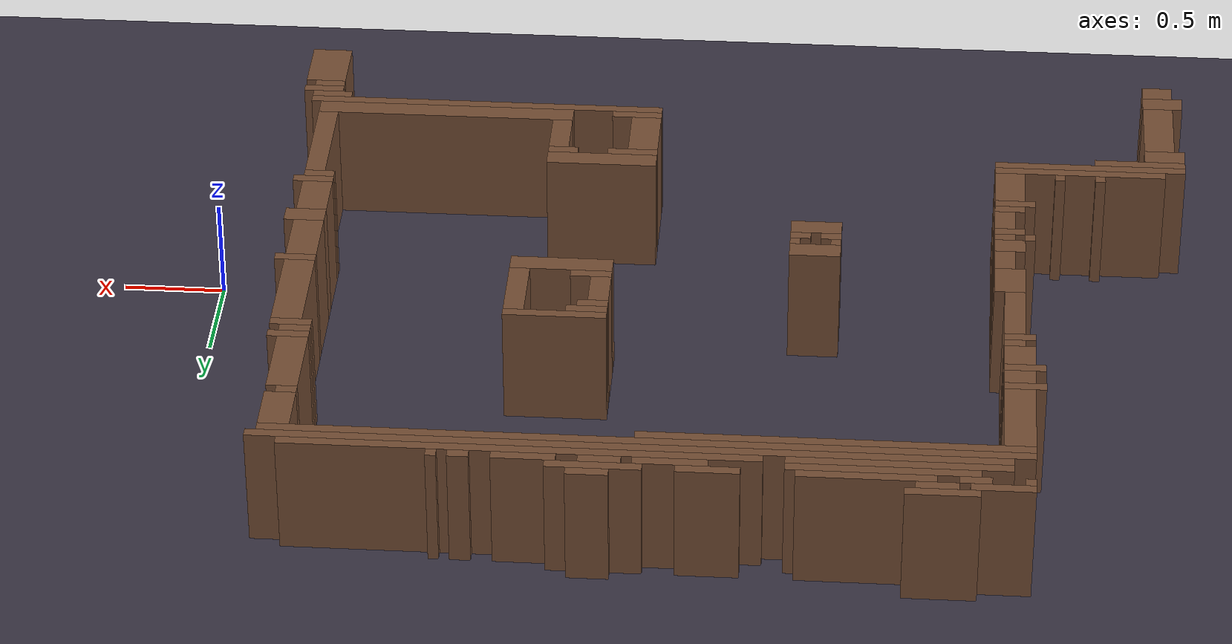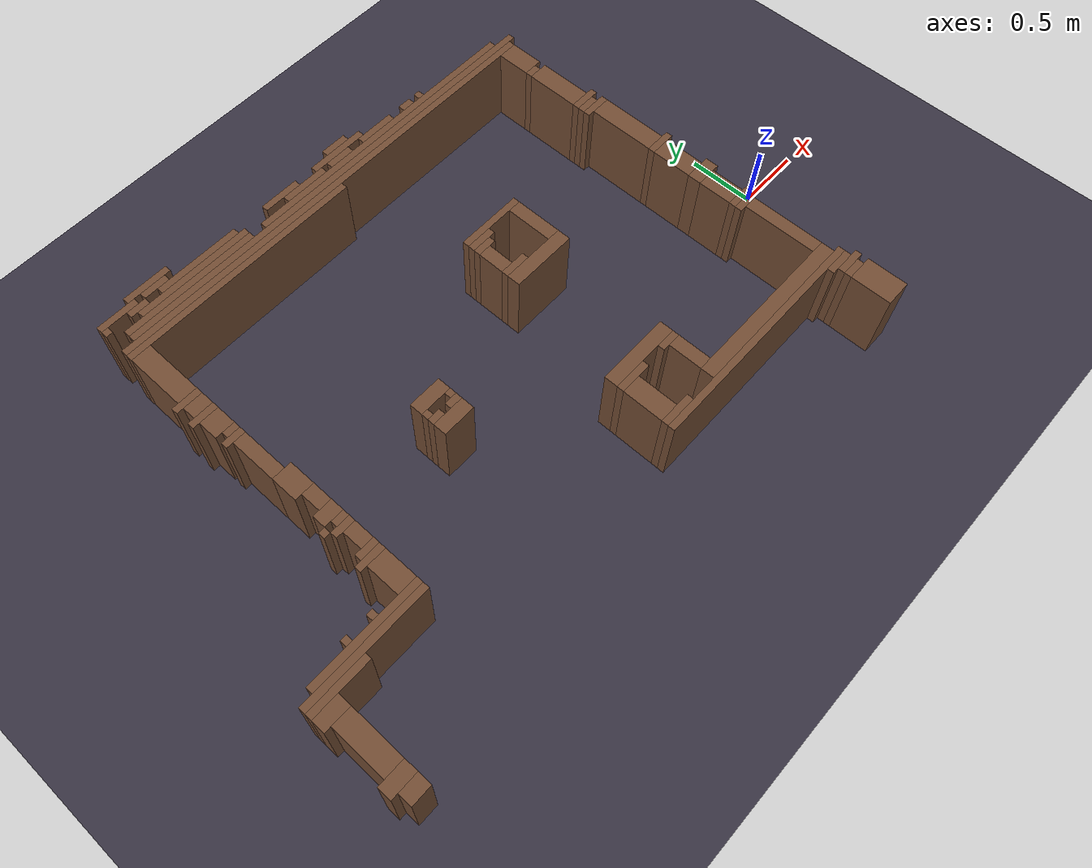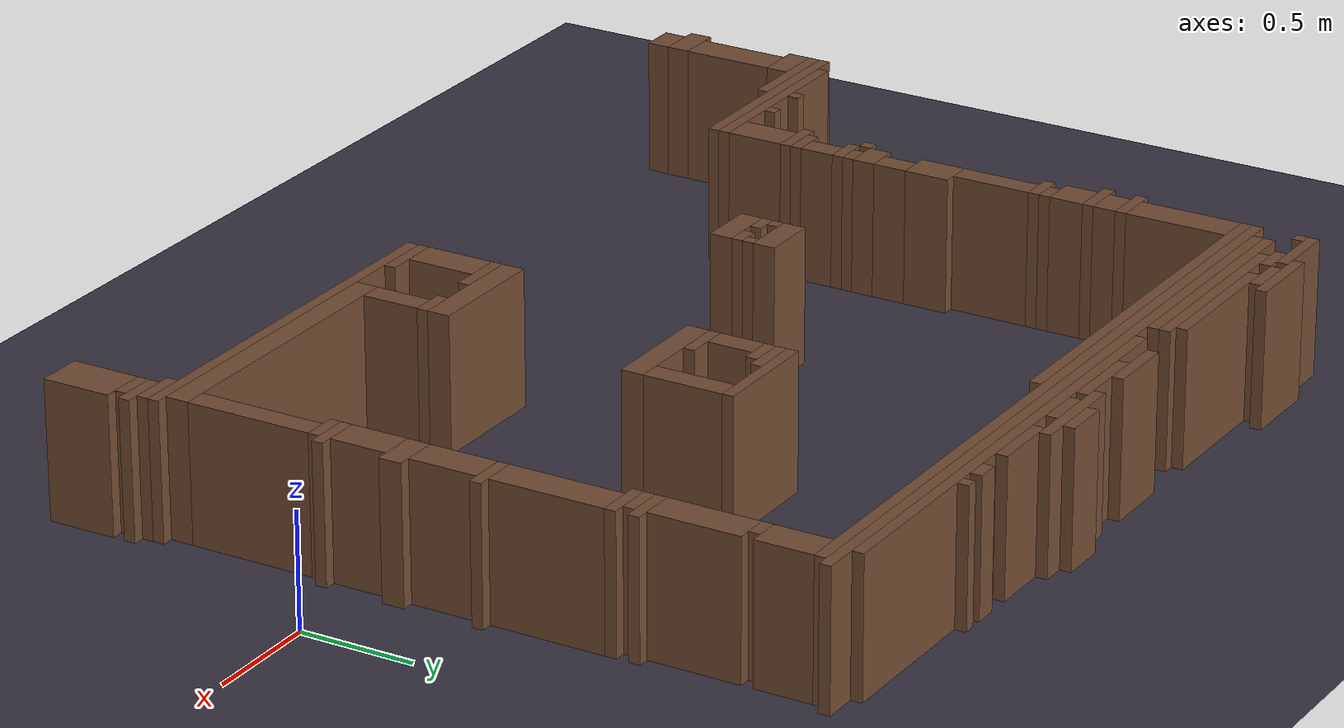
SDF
<sdf version="1.8">
 <world name="holloween">
  <model name="ground_plane">
   <static>true</static>
   <link name="link">
    <collision name="collision">
     <geometry><plane><normal>0 0 1</normal><size>100 100</size></plane></geometry>
    </collision>
    <visual name="visual">
     <geometry><plane><normal>0 0 1</normal><size>100 100</size></plane></geometry>
     <material><ambient>0.22 0.2 0.26 1</ambient><diffuse>0.22 0.2 0.26 1</diffuse></material>
    </visual>
   </link>
  </model>
  <model name="wall_0">
   <static>true</static>
   <pose>-3.634 2.249 0.300 0 0 0</pose>
   <link name="l">
    <collision name="c"><geometry><box><size>0.350 0.050 0.600</size></box></geometry></collision>
    <visual name="v">
     <geometry><box><size>0.350 0.050 0.600</size></box></geometry>
     <material><ambient>0.45 0.3 0.2 1</ambient><diffuse>0.45 0.3 0.2 1</diffuse></material>
    </visual>
   </link>
  </model>
  <model name="wall_1">
   <static>true</static>
   <pose>-3.609 2.199 0.300 0 0 0</pose>
   <link name="l">
    <collision name="c"><geometry><box><size>0.200 0.050 0.600</size></box></geometry></collision>
    <visual name="v">
     <geometry><box><size>0.200 0.050 0.600</size></box></geometry>
     <material><ambient>0.45 0.3 0.2 1</ambient><diffuse>0.45 0.3 0.2 1</diffuse></material>
    </visual>
   </link>
  </model>
  <model name="wall_2">
   <static>true</static>
   <pose>-2.009 2.199 0.300 0 0 0</pose>
   <link name="l">
    <collision name="c"><geometry><box><size>0.200 0.050 0.600</size></box></geometry></collision>
    <visual name="v">
     <geometry><box><size>0.200 0.050 0.600</size></box></geometry>
     <material><ambient>0.45 0.3 0.2 1</ambient><diffuse>0.45 0.3 0.2 1</diffuse></material>
    </visual>
   </link>
  </model>
  <model name="wall_3">
   <static>true</static>
   <pose>-3.909 2.199 0.300 0 0 0</pose>
   <link name="l">
    <collision name="c"><geometry><box><size>0.300 0.050 0.600</size></box></geometry></collision>
    <visual name="v">
     <geometry><box><size>0.300 0.050 0.600</size></box></geometry>
     <material><ambient>0.45 0.3 0.2 1</ambient><diffuse>0.45 0.3 0.2 1</diffuse></material>
    </visual>
   </link>
  </model>
  <model name="wall_4">
   <static>true</static>
   <pose>-3.284 2.149 0.300 0 0 0</pose>
   <link name="l">
    <collision name="c"><geometry><box><size>0.650 0.050 0.600</size></box></geometry></collision>
    <visual name="v">
     <geometry><box><size>0.650 0.050 0.600</size></box></geometry>
     <material><ambient>0.45 0.3 0.2 1</ambient><diffuse>0.45 0.3 0.2 1</diffuse></material>
    </visual>
   </link>
  </model>
  <model name="wall_5">
   <static>true</static>
   <pose>-2.559 2.149 0.300 0 0 0</pose>
   <link name="l">
    <collision name="c"><geometry><box><size>0.300 0.050 0.600</size></box></geometry></collision>
    <visual name="v">
     <geometry><box><size>0.300 0.050 0.600</size></box></geometry>
     <material><ambient>0.45 0.3 0.2 1</ambient><diffuse>0.45 0.3 0.2 1</diffuse></material>
    </visual>
   </link>
  </model>
  <model name="wall_6">
   <static>true</static>
   <pose>-3.784 2.149 0.300 0 0 0</pose>
   <link name="l">
    <collision name="c"><geometry><box><size>0.150 0.050 0.600</size></box></geometry></collision>
    <visual name="v">
     <geometry><box><size>0.150 0.050 0.600</size></box></geometry>
     <material><ambient>0.45 0.3 0.2 1</ambient><diffuse>0.45 0.3 0.2 1</diffuse></material>
    </visual>
   </link>
  </model>
  <model name="wall_7">
   <static>true</static>
   <pose>-2.034 2.149 0.300 0 0 0</pose>
   <link name="l">
    <collision name="c"><geometry><box><size>0.450 0.050 0.600</size></box></geometry></collision>
    <visual name="v">
     <geometry><box><size>0.450 0.050 0.600</size></box></geometry>
     <material><ambient>0.45 0.3 0.2 1</ambient><diffuse>0.45 0.3 0.2 1</diffuse></material>
    </visual>
   </link>
  </model>
  <model name="wall_8">
   <static>true</static>
   <pose>-4.034 2.149 0.300 0 0 0</pose>
   <link name="l">
    <collision name="c"><geometry><box><size>0.050 0.050 0.600</size></box></geometry></collision>
    <visual name="v">
     <geometry><box><size>0.050 0.050 0.600</size></box></geometry>
     <material><ambient>0.45 0.3 0.2 1</ambient><diffuse>0.45 0.3 0.2 1</diffuse></material>
    </visual>
   </link>
  </model>
  <model name="wall_9">
   <static>true</static>
   <pose>-2.384 2.099 0.300 0 0 0</pose>
   <link name="l">
    <collision name="c"><geometry><box><size>0.350 0.050 0.600</size></box></geometry></collision>
    <visual name="v">
     <geometry><box><size>0.350 0.050 0.600</size></box></geometry>
     <material><ambient>0.45 0.3 0.2 1</ambient><diffuse>0.45 0.3 0.2 1</diffuse></material>
    </visual>
   </link>
  </model>
  <model name="wall_10">
   <static>true</static>
   <pose>-3.359 2.099 0.300 0 0 0</pose>
   <link name="l">
    <collision name="c"><geometry><box><size>0.900 0.050 0.600</size></box></geometry></collision>
    <visual name="v">
     <geometry><box><size>0.900 0.050 0.600</size></box></geometry>
     <material><ambient>0.45 0.3 0.2 1</ambient><diffuse>0.45 0.3 0.2 1</diffuse></material>
    </visual>
   </link>
  </model>
  <model name="wall_11">
   <static>true</static>
   <pose>-1.709 2.099 0.300 0 0 0</pose>
   <link name="l">
    <collision name="c"><geometry><box><size>0.300 0.050 0.600</size></box></geometry></collision>
    <visual name="v">
     <geometry><box><size>0.300 0.050 0.600</size></box></geometry>
     <material><ambient>0.45 0.3 0.2 1</ambient><diffuse>0.45 0.3 0.2 1</diffuse></material>
    </visual>
   </link>
  </model>
  <model name="wall_12">
   <static>true</static>
   <pose>-2.059 2.099 0.300 0 0 0</pose>
   <link name="l">
    <collision name="c"><geometry><box><size>0.200 0.050 0.600</size></box></geometry></collision>
    <visual name="v">
     <geometry><box><size>0.200 0.050 0.600</size></box></geometry>
     <material><ambient>0.45 0.3 0.2 1</ambient><diffuse>0.45 0.3 0.2 1</diffuse></material>
    </visual>
   </link>
  </model>
  <model name="wall_13">
   <static>true</static>
   <pose>-1.409 2.099 0.300 0 0 0</pose>
   <link name="l">
    <collision name="c"><geometry><box><size>0.100 0.050 0.600</size></box></geometry></collision>
    <visual name="v">
     <geometry><box><size>0.100 0.050 0.600</size></box></geometry>
     <material><ambient>0.45 0.3 0.2 1</ambient><diffuse>0.45 0.3 0.2 1</diffuse></material>
    </visual>
   </link>
  </model>
  <model name="wall_14">
   <static>true</static>
   <pose>-1.284 2.099 0.300 0 0 0</pose>
   <link name="l">
    <collision name="c"><geometry><box><size>0.050 0.050 0.600</size></box></geometry></collision>
    <visual name="v">
     <geometry><box><size>0.050 0.050 0.600</size></box></geometry>
     <material><ambient>0.45 0.3 0.2 1</ambient><diffuse>0.45 0.3 0.2 1</diffuse></material>
    </visual>
   </link>
  </model>
  <model name="wall_15">
   <static>true</static>
   <pose>-1.684 2.049 0.300 0 0 0</pose>
   <link name="l">
    <collision name="c"><geometry><box><size>2.250 0.050 0.600</size></box></geometry></collision>
    <visual name="v">
     <geometry><box><size>2.250 0.050 0.600</size></box></geometry>
     <material><ambient>0.45 0.3 0.2 1</ambient><diffuse>0.45 0.3 0.2 1</diffuse></material>
    </visual>
   </link>
  </model>
  <model name="wall_16">
   <static>true</static>
   <pose>-3.434 2.049 0.300 0 0 0</pose>
   <link name="l">
    <collision name="c"><geometry><box><size>1.050 0.050 0.600</size></box></geometry></collision>
    <visual name="v">
     <geometry><box><size>1.050 0.050 0.600</size></box></geometry>
     <material><ambient>0.45 0.3 0.2 1</ambient><diffuse>0.45 0.3 0.2 1</diffuse></material>
    </visual>
   </link>
  </model>
  <model name="wall_17">
   <static>true</static>
   <pose>-2.184 1.999 0.300 0 0 0</pose>
   <link name="l">
    <collision name="c"><geometry><box><size>3.550 0.050 0.600</size></box></geometry></collision>
    <visual name="v">
     <geometry><box><size>3.550 0.050 0.600</size></box></geometry>
     <material><ambient>0.45 0.3 0.2 1</ambient><diffuse>0.45 0.3 0.2 1</diffuse></material>
    </visual>
   </link>
  </model>
  <model name="wall_18">
   <static>true</static>
   <pose>-2.259 1.949 0.300 0 0 0</pose>
   <link name="l">
    <collision name="c"><geometry><box><size>3.600 0.050 0.600</size></box></geometry></collision>
    <visual name="v">
     <geometry><box><size>3.600 0.050 0.600</size></box></geometry>
     <material><ambient>0.45 0.3 0.2 1</ambient><diffuse>0.45 0.3 0.2 1</diffuse></material>
    </visual>
   </link>
  </model>
  <model name="wall_19">
   <static>true</static>
   <pose>-3.134 1.899 0.300 0 0 0</pose>
   <link name="l">
    <collision name="c"><geometry><box><size>1.850 0.050 0.600</size></box></geometry></collision>
    <visual name="v">
     <geometry><box><size>1.850 0.050 0.600</size></box></geometry>
     <material><ambient>0.45 0.3 0.2 1</ambient><diffuse>0.45 0.3 0.2 1</diffuse></material>
    </visual>
   </link>
  </model>
  <model name="wall_20">
   <static>true</static>
   <pose>-0.534 1.799 0.300 0 0 0</pose>
   <link name="l">
    <collision name="c"><geometry><box><size>0.150 0.250 0.600</size></box></geometry></collision>
    <visual name="v">
     <geometry><box><size>0.150 0.250 0.600</size></box></geometry>
     <material><ambient>0.45 0.3 0.2 1</ambient><diffuse>0.45 0.3 0.2 1</diffuse></material>
    </visual>
   </link>
  </model>
  <model name="wall_21">
   <static>true</static>
   <pose>-0.559 1.649 0.300 0 0 0</pose>
   <link name="l">
    <collision name="c"><geometry><box><size>0.100 0.050 0.600</size></box></geometry></collision>
    <visual name="v">
     <geometry><box><size>0.100 0.050 0.600</size></box></geometry>
     <material><ambient>0.45 0.3 0.2 1</ambient><diffuse>0.45 0.3 0.2 1</diffuse></material>
    </visual>
   </link>
  </model>
  <model name="wall_22">
   <static>true</static>
   <pose>-3.984 1.649 0.300 0 0 0</pose>
   <link name="l">
    <collision name="c"><geometry><box><size>0.150 0.450 0.600</size></box></geometry></collision>
    <visual name="v">
     <geometry><box><size>0.150 0.450 0.600</size></box></geometry>
     <material><ambient>0.45 0.3 0.2 1</ambient><diffuse>0.45 0.3 0.2 1</diffuse></material>
    </visual>
   </link>
  </model>
  <model name="wall_23">
   <static>true</static>
   <pose>-4.009 1.399 0.300 0 0 0</pose>
   <link name="l">
    <collision name="c"><geometry><box><size>0.200 0.050 0.600</size></box></geometry></collision>
    <visual name="v">
     <geometry><box><size>0.200 0.050 0.600</size></box></geometry>
     <material><ambient>0.45 0.3 0.2 1</ambient><diffuse>0.45 0.3 0.2 1</diffuse></material>
    </visual>
   </link>
  </model>
  <model name="wall_24">
   <static>true</static>
   <pose>-3.984 1.324 0.300 0 0 0</pose>
   <link name="l">
    <collision name="c"><geometry><box><size>0.150 0.100 0.600</size></box></geometry></collision>
    <visual name="v">
     <geometry><box><size>0.150 0.100 0.600</size></box></geometry>
     <material><ambient>0.45 0.3 0.2 1</ambient><diffuse>0.45 0.3 0.2 1</diffuse></material>
    </visual>
   </link>
  </model>
  <model name="wall_25">
   <static>true</static>
   <pose>-0.534 1.424 0.300 0 0 0</pose>
   <link name="l">
    <collision name="c"><geometry><box><size>0.150 0.400 0.600</size></box></geometry></collision>
    <visual name="v">
     <geometry><box><size>0.150 0.400 0.600</size></box></geometry>
     <material><ambient>0.45 0.3 0.2 1</ambient><diffuse>0.45 0.3 0.2 1</diffuse></material>
    </visual>
   </link>
  </model>
  <model name="wall_26">
   <static>true</static>
   <pose>-4.009 1.249 0.300 0 0 0</pose>
   <link name="l">
    <collision name="c"><geometry><box><size>0.200 0.050 0.600</size></box></geometry></collision>
    <visual name="v">
     <geometry><box><size>0.200 0.050 0.600</size></box></geometry>
     <material><ambient>0.45 0.3 0.2 1</ambient><diffuse>0.45 0.3 0.2 1</diffuse></material>
    </visual>
   </link>
  </model>
  <model name="wall_27">
   <static>true</static>
   <pose>-0.509 1.199 0.300 0 0 0</pose>
   <link name="l">
    <collision name="c"><geometry><box><size>0.200 0.050 0.600</size></box></geometry></collision>
    <visual name="v">
     <geometry><box><size>0.200 0.050 0.600</size></box></geometry>
     <material><ambient>0.45 0.3 0.2 1</ambient><diffuse>0.45 0.3 0.2 1</diffuse></material>
    </visual>
   </link>
  </model>
  <model name="wall_28">
   <static>true</static>
   <pose>-0.534 1.149 0.300 0 0 0</pose>
   <link name="l">
    <collision name="c"><geometry><box><size>0.150 0.050 0.600</size></box></geometry></collision>
    <visual name="v">
     <geometry><box><size>0.150 0.050 0.600</size></box></geometry>
     <material><ambient>0.45 0.3 0.2 1</ambient><diffuse>0.45 0.3 0.2 1</diffuse></material>
    </visual>
   </link>
  </model>
  <model name="wall_29">
   <static>true</static>
   <pose>-3.984 1.149 0.300 0 0 0</pose>
   <link name="l">
    <collision name="c"><geometry><box><size>0.150 0.150 0.600</size></box></geometry></collision>
    <visual name="v">
     <geometry><box><size>0.150 0.150 0.600</size></box></geometry>
     <material><ambient>0.45 0.3 0.2 1</ambient><diffuse>0.45 0.3 0.2 1</diffuse></material>
    </visual>
   </link>
  </model>
  <model name="wall_30">
   <static>true</static>
   <pose>-0.509 1.099 0.300 0 0 0</pose>
   <link name="l">
    <collision name="c"><geometry><box><size>0.200 0.050 0.600</size></box></geometry></collision>
    <visual name="v">
     <geometry><box><size>0.200 0.050 0.600</size></box></geometry>
     <material><ambient>0.45 0.3 0.2 1</ambient><diffuse>0.45 0.3 0.2 1</diffuse></material>
    </visual>
   </link>
  </model>
  <model name="wall_31">
   <static>true</static>
   <pose>-3.959 1.049 0.300 0 0 0</pose>
   <link name="l">
    <collision name="c"><geometry><box><size>0.100 0.050 0.600</size></box></geometry></collision>
    <visual name="v">
     <geometry><box><size>0.100 0.050 0.600</size></box></geometry>
     <material><ambient>0.45 0.3 0.2 1</ambient><diffuse>0.45 0.3 0.2 1</diffuse></material>
    </visual>
   </link>
  </model>
  <model name="wall_32">
   <static>true</static>
   <pose>-3.984 0.999 0.300 0 0 0</pose>
   <link name="l">
    <collision name="c"><geometry><box><size>0.150 0.050 0.600</size></box></geometry></collision>
    <visual name="v">
     <geometry><box><size>0.150 0.050 0.600</size></box></geometry>
     <material><ambient>0.45 0.3 0.2 1</ambient><diffuse>0.45 0.3 0.2 1</diffuse></material>
    </visual>
   </link>
  </model>
  <model name="wall_33">
   <static>true</static>
   <pose>-1.759 0.949 0.300 0 0 0</pose>
   <link name="l">
    <collision name="c"><geometry><box><size>0.500 0.050 0.600</size></box></geometry></collision>
    <visual name="v">
     <geometry><box><size>0.500 0.050 0.600</size></box></geometry>
     <material><ambient>0.45 0.3 0.2 1</ambient><diffuse>0.45 0.3 0.2 1</diffuse></material>
    </visual>
   </link>
  </model>
  <model name="wall_34">
   <static>true</static>
   <pose>-1.909 0.899 0.300 0 0 0</pose>
   <link name="l">
    <collision name="c"><geometry><box><size>0.200 0.050 0.600</size></box></geometry></collision>
    <visual name="v">
     <geometry><box><size>0.200 0.050 0.600</size></box></geometry>
     <material><ambient>0.45 0.3 0.2 1</ambient><diffuse>0.45 0.3 0.2 1</diffuse></material>
    </visual>
   </link>
  </model>
  <model name="wall_35">
   <static>true</static>
   <pose>-1.934 0.849 0.300 0 0 0</pose>
   <link name="l">
    <collision name="c"><geometry><box><size>0.150 0.050 0.600</size></box></geometry></collision>
    <visual name="v">
     <geometry><box><size>0.150 0.050 0.600</size></box></geometry>
     <material><ambient>0.45 0.3 0.2 1</ambient><diffuse>0.45 0.3 0.2 1</diffuse></material>
    </visual>
   </link>
  </model>
  <model name="wall_36">
   <static>true</static>
   <pose>-3.959 0.799 0.300 0 0 0</pose>
   <link name="l">
    <collision name="c"><geometry><box><size>0.100 0.350 0.600</size></box></geometry></collision>
    <visual name="v">
     <geometry><box><size>0.100 0.350 0.600</size></box></geometry>
     <material><ambient>0.45 0.3 0.2 1</ambient><diffuse>0.45 0.3 0.2 1</diffuse></material>
    </visual>
   </link>
  </model>
  <model name="wall_37">
   <static>true</static>
   <pose>-1.959 0.724 0.300 0 0 0</pose>
   <link name="l">
    <collision name="c"><geometry><box><size>0.100 0.200 0.600</size></box></geometry></collision>
    <visual name="v">
     <geometry><box><size>0.100 0.200 0.600</size></box></geometry>
     <material><ambient>0.45 0.3 0.2 1</ambient><diffuse>0.45 0.3 0.2 1</diffuse></material>
    </visual>
   </link>
  </model>
  <model name="wall_38">
   <static>true</static>
   <pose>-0.484 0.824 0.300 0 0 0</pose>
   <link name="l">
    <collision name="c"><geometry><box><size>0.150 0.500 0.600</size></box></geometry></collision>
    <visual name="v">
     <geometry><box><size>0.150 0.500 0.600</size></box></geometry>
     <material><ambient>0.45 0.3 0.2 1</ambient><diffuse>0.45 0.3 0.2 1</diffuse></material>
    </visual>
   </link>
  </model>
  <model name="wall_39">
   <static>true</static>
   <pose>-1.559 0.749 0.300 0 0 0</pose>
   <link name="l">
    <collision name="c"><geometry><box><size>0.100 0.350 0.600</size></box></geometry></collision>
    <visual name="v">
     <geometry><box><size>0.100 0.350 0.600</size></box></geometry>
     <material><ambient>0.45 0.3 0.2 1</ambient><diffuse>0.45 0.3 0.2 1</diffuse></material>
    </visual>
   </link>
  </model>
  <model name="wall_40">
   <static>true</static>
   <pose>-1.909 0.599 0.300 0 0 0</pose>
   <link name="l">
    <collision name="c"><geometry><box><size>0.200 0.050 0.600</size></box></geometry></collision>
    <visual name="v">
     <geometry><box><size>0.200 0.050 0.600</size></box></geometry>
     <material><ambient>0.45 0.3 0.2 1</ambient><diffuse>0.45 0.3 0.2 1</diffuse></material>
    </visual>
   </link>
  </model>
  <model name="wall_41">
   <static>true</static>
   <pose>-0.459 0.549 0.300 0 0 0</pose>
   <link name="l">
    <collision name="c"><geometry><box><size>0.200 0.050 0.600</size></box></geometry></collision>
    <visual name="v">
     <geometry><box><size>0.200 0.050 0.600</size></box></geometry>
     <material><ambient>0.45 0.3 0.2 1</ambient><diffuse>0.45 0.3 0.2 1</diffuse></material>
    </visual>
   </link>
  </model>
  <model name="wall_42">
   <static>true</static>
   <pose>-1.759 0.524 0.300 0 0 0</pose>
   <link name="l">
    <collision name="c"><geometry><box><size>0.500 0.100 0.600</size></box></geometry></collision>
    <visual name="v">
     <geometry><box><size>0.500 0.100 0.600</size></box></geometry>
     <material><ambient>0.45 0.3 0.2 1</ambient><diffuse>0.45 0.3 0.2 1</diffuse></material>
    </visual>
   </link>
  </model>
  <model name="wall_43">
   <static>true</static>
   <pose>-3.934 0.524 0.300 0 0 0</pose>
   <link name="l">
    <collision name="c"><geometry><box><size>0.150 0.200 0.600</size></box></geometry></collision>
    <visual name="v">
     <geometry><box><size>0.150 0.200 0.600</size></box></geometry>
     <material><ambient>0.45 0.3 0.2 1</ambient><diffuse>0.45 0.3 0.2 1</diffuse></material>
    </visual>
   </link>
  </model>
  <model name="wall_44">
   <static>true</static>
   <pose>-3.909 0.349 0.300 0 0 0</pose>
   <link name="l">
    <collision name="c"><geometry><box><size>0.100 0.150 0.600</size></box></geometry></collision>
    <visual name="v">
     <geometry><box><size>0.100 0.150 0.600</size></box></geometry>
     <material><ambient>0.45 0.3 0.2 1</ambient><diffuse>0.45 0.3 0.2 1</diffuse></material>
    </visual>
   </link>
  </model>
  <model name="wall_45">
   <static>true</static>
   <pose>-2.984 0.324 0.300 0 0 0</pose>
   <link name="l">
    <collision name="c"><geometry><box><size>0.250 0.100 0.600</size></box></geometry></collision>
    <visual name="v">
     <geometry><box><size>0.250 0.100 0.600</size></box></geometry>
     <material><ambient>0.45 0.3 0.2 1</ambient><diffuse>0.45 0.3 0.2 1</diffuse></material>
    </visual>
   </link>
  </model>
  <model name="wall_46">
   <static>true</static>
   <pose>-0.484 0.374 0.300 0 0 0</pose>
   <link name="l">
    <collision name="c"><geometry><box><size>0.150 0.300 0.600</size></box></geometry></collision>
    <visual name="v">
     <geometry><box><size>0.150 0.300 0.600</size></box></geometry>
     <material><ambient>0.45 0.3 0.2 1</ambient><diffuse>0.45 0.3 0.2 1</diffuse></material>
    </visual>
   </link>
  </model>
  <model name="wall_47">
   <static>true</static>
   <pose>-3.084 0.249 0.300 0 0 0</pose>
   <link name="l">
    <collision name="c"><geometry><box><size>0.050 0.050 0.600</size></box></geometry></collision>
    <visual name="v">
     <geometry><box><size>0.050 0.050 0.600</size></box></geometry>
     <material><ambient>0.45 0.3 0.2 1</ambient><diffuse>0.45 0.3 0.2 1</diffuse></material>
    </visual>
   </link>
  </model>
  <model name="wall_48">
   <static>true</static>
   <pose>-2.884 0.249 0.300 0 0 0</pose>
   <link name="l">
    <collision name="c"><geometry><box><size>0.050 0.050 0.600</size></box></geometry></collision>
    <visual name="v">
     <geometry><box><size>0.050 0.050 0.600</size></box></geometry>
     <material><ambient>0.45 0.3 0.2 1</ambient><diffuse>0.45 0.3 0.2 1</diffuse></material>
    </visual>
   </link>
  </model>
  <model name="wall_49">
   <static>true</static>
   <pose>-3.934 0.224 0.300 0 0 0</pose>
   <link name="l">
    <collision name="c"><geometry><box><size>0.150 0.100 0.600</size></box></geometry></collision>
    <visual name="v">
     <geometry><box><size>0.150 0.100 0.600</size></box></geometry>
     <material><ambient>0.45 0.3 0.2 1</ambient><diffuse>0.45 0.3 0.2 1</diffuse></material>
    </visual>
   </link>
  </model>
  <model name="wall_50">
   <static>true</static>
   <pose>-2.909 0.199 0.300 0 0 0</pose>
   <link name="l">
    <collision name="c"><geometry><box><size>0.100 0.050 0.600</size></box></geometry></collision>
    <visual name="v">
     <geometry><box><size>0.100 0.050 0.600</size></box></geometry>
     <material><ambient>0.45 0.3 0.2 1</ambient><diffuse>0.45 0.3 0.2 1</diffuse></material>
    </visual>
   </link>
  </model>
  <model name="wall_51">
   <static>true</static>
   <pose>-3.059 0.199 0.300 0 0 0</pose>
   <link name="l">
    <collision name="c"><geometry><box><size>0.100 0.050 0.600</size></box></geometry></collision>
    <visual name="v">
     <geometry><box><size>0.100 0.050 0.600</size></box></geometry>
     <material><ambient>0.45 0.3 0.2 1</ambient><diffuse>0.45 0.3 0.2 1</diffuse></material>
    </visual>
   </link>
  </model>
  <model name="wall_52">
   <static>true</static>
   <pose>-0.459 0.174 0.300 0 0 0</pose>
   <link name="l">
    <collision name="c"><geometry><box><size>0.200 0.100 0.600</size></box></geometry></collision>
    <visual name="v">
     <geometry><box><size>0.200 0.100 0.600</size></box></geometry>
     <material><ambient>0.45 0.3 0.2 1</ambient><diffuse>0.45 0.3 0.2 1</diffuse></material>
    </visual>
   </link>
  </model>
  <model name="wall_53">
   <static>true</static>
   <pose>-4.034 0.149 0.300 0 0 0</pose>
   <link name="l">
    <collision name="c"><geometry><box><size>0.050 0.050 0.600</size></box></geometry></collision>
    <visual name="v">
     <geometry><box><size>0.050 0.050 0.600</size></box></geometry>
     <material><ambient>0.45 0.3 0.2 1</ambient><diffuse>0.45 0.3 0.2 1</diffuse></material>
    </visual>
   </link>
  </model>
  <model name="wall_54">
   <static>true</static>
   <pose>-3.909 0.149 0.300 0 0 0</pose>
   <link name="l">
    <collision name="c"><geometry><box><size>0.100 0.050 0.600</size></box></geometry></collision>
    <visual name="v">
     <geometry><box><size>0.100 0.050 0.600</size></box></geometry>
     <material><ambient>0.45 0.3 0.2 1</ambient><diffuse>0.45 0.3 0.2 1</diffuse></material>
    </visual>
   </link>
  </model>
  <model name="wall_55">
   <static>true</static>
   <pose>-2.984 0.124 0.300 0 0 0</pose>
   <link name="l">
    <collision name="c"><geometry><box><size>0.250 0.100 0.600</size></box></geometry></collision>
    <visual name="v">
     <geometry><box><size>0.250 0.100 0.600</size></box></geometry>
     <material><ambient>0.45 0.3 0.2 1</ambient><diffuse>0.45 0.3 0.2 1</diffuse></material>
    </visual>
   </link>
  </model>
  <model name="wall_56">
   <static>true</static>
   <pose>-3.934 0.099 0.300 0 0 0</pose>
   <link name="l">
    <collision name="c"><geometry><box><size>0.150 0.050 0.600</size></box></geometry></collision>
    <visual name="v">
     <geometry><box><size>0.150 0.050 0.600</size></box></geometry>
     <material><ambient>0.45 0.3 0.2 1</ambient><diffuse>0.45 0.3 0.2 1</diffuse></material>
    </visual>
   </link>
  </model>
  <model name="wall_57">
   <static>true</static>
   <pose>-3.909 -0.001 0.300 0 0 0</pose>
   <link name="l">
    <collision name="c"><geometry><box><size>0.100 0.150 0.600</size></box></geometry></collision>
    <visual name="v">
     <geometry><box><size>0.100 0.150 0.600</size></box></geometry>
     <material><ambient>0.45 0.3 0.2 1</ambient><diffuse>0.45 0.3 0.2 1</diffuse></material>
    </visual>
   </link>
  </model>
  <model name="wall_58">
   <static>true</static>
   <pose>-0.484 -0.001 0.300 0 0 0</pose>
   <link name="l">
    <collision name="c"><geometry><box><size>0.150 0.250 0.600</size></box></geometry></collision>
    <visual name="v">
     <geometry><box><size>0.150 0.250 0.600</size></box></geometry>
     <material><ambient>0.45 0.3 0.2 1</ambient><diffuse>0.45 0.3 0.2 1</diffuse></material>
    </visual>
   </link>
  </model>
  <model name="wall_59">
   <static>true</static>
   <pose>-3.934 -0.101 0.300 0 0 0</pose>
   <link name="l">
    <collision name="c"><geometry><box><size>0.150 0.050 0.600</size></box></geometry></collision>
    <visual name="v">
     <geometry><box><size>0.150 0.050 0.600</size></box></geometry>
     <material><ambient>0.45 0.3 0.2 1</ambient><diffuse>0.45 0.3 0.2 1</diffuse></material>
    </visual>
   </link>
  </model>
  <model name="wall_60">
   <static>true</static>
   <pose>-3.959 -0.151 0.300 0 0 0</pose>
   <link name="l">
    <collision name="c"><geometry><box><size>0.200 0.050 0.600</size></box></geometry></collision>
    <visual name="v">
     <geometry><box><size>0.200 0.050 0.600</size></box></geometry>
     <material><ambient>0.45 0.3 0.2 1</ambient><diffuse>0.45 0.3 0.2 1</diffuse></material>
    </visual>
   </link>
  </model>
  <model name="wall_61">
   <static>true</static>
   <pose>-0.459 -0.151 0.300 0 0 0</pose>
   <link name="l">
    <collision name="c"><geometry><box><size>0.200 0.050 0.600</size></box></geometry></collision>
    <visual name="v">
     <geometry><box><size>0.200 0.050 0.600</size></box></geometry>
     <material><ambient>0.45 0.3 0.2 1</ambient><diffuse>0.45 0.3 0.2 1</diffuse></material>
    </visual>
   </link>
  </model>
  <model name="wall_62">
   <static>true</static>
   <pose>-0.484 -0.201 0.300 0 0 0</pose>
   <link name="l">
    <collision name="c"><geometry><box><size>0.150 0.050 0.600</size></box></geometry></collision>
    <visual name="v">
     <geometry><box><size>0.150 0.050 0.600</size></box></geometry>
     <material><ambient>0.45 0.3 0.2 1</ambient><diffuse>0.45 0.3 0.2 1</diffuse></material>
    </visual>
   </link>
  </model>
  <model name="wall_63">
   <static>true</static>
   <pose>-3.934 -0.301 0.300 0 0 0</pose>
   <link name="l">
    <collision name="c"><geometry><box><size>0.150 0.250 0.600</size></box></geometry></collision>
    <visual name="v">
     <geometry><box><size>0.150 0.250 0.600</size></box></geometry>
     <material><ambient>0.45 0.3 0.2 1</ambient><diffuse>0.45 0.3 0.2 1</diffuse></material>
    </visual>
   </link>
  </model>
  <model name="wall_64">
   <static>true</static>
   <pose>-4.384 -0.401 0.300 0 0 0</pose>
   <link name="l">
    <collision name="c"><geometry><box><size>0.050 0.050 0.600</size></box></geometry></collision>
    <visual name="v">
     <geometry><box><size>0.050 0.050 0.600</size></box></geometry>
     <material><ambient>0.45 0.3 0.2 1</ambient><diffuse>0.45 0.3 0.2 1</diffuse></material>
    </visual>
   </link>
  </model>
  <model name="wall_65">
   <static>true</static>
   <pose>-4.184 -0.401 0.300 0 0 0</pose>
   <link name="l">
    <collision name="c"><geometry><box><size>0.050 0.050 0.600</size></box></geometry></collision>
    <visual name="v">
     <geometry><box><size>0.050 0.050 0.600</size></box></geometry>
     <material><ambient>0.45 0.3 0.2 1</ambient><diffuse>0.45 0.3 0.2 1</diffuse></material>
    </visual>
   </link>
  </model>
  <model name="wall_66">
   <static>true</static>
   <pose>-1.884 -0.426 0.300 0 0 0</pose>
   <link name="l">
    <collision name="c"><geometry><box><size>0.550 0.100 0.600</size></box></geometry></collision>
    <visual name="v">
     <geometry><box><size>0.550 0.100 0.600</size></box></geometry>
     <material><ambient>0.45 0.3 0.2 1</ambient><diffuse>0.45 0.3 0.2 1</diffuse></material>
    </visual>
   </link>
  </model>
  <model name="wall_67">
   <static>true</static>
   <pose>-4.284 -0.451 0.300 0 0 0</pose>
   <link name="l">
    <collision name="c"><geometry><box><size>0.850 0.050 0.600</size></box></geometry></collision>
    <visual name="v">
     <geometry><box><size>0.850 0.050 0.600</size></box></geometry>
     <material><ambient>0.45 0.3 0.2 1</ambient><diffuse>0.45 0.3 0.2 1</diffuse></material>
    </visual>
   </link>
  </model>
  <model name="wall_68">
   <static>true</static>
   <pose>-1.684 -0.501 0.300 0 0 0</pose>
   <link name="l">
    <collision name="c"><geometry><box><size>0.150 0.050 0.600</size></box></geometry></collision>
    <visual name="v">
     <geometry><box><size>0.150 0.050 0.600</size></box></geometry>
     <material><ambient>0.45 0.3 0.2 1</ambient><diffuse>0.45 0.3 0.2 1</diffuse></material>
    </visual>
   </link>
  </model>
  <model name="wall_69">
   <static>true</static>
   <pose>-2.034 -0.501 0.300 0 0 0</pose>
   <link name="l">
    <collision name="c"><geometry><box><size>0.250 0.050 0.600</size></box></geometry></collision>
    <visual name="v">
     <geometry><box><size>0.250 0.050 0.600</size></box></geometry>
     <material><ambient>0.45 0.3 0.2 1</ambient><diffuse>0.45 0.3 0.2 1</diffuse></material>
    </visual>
   </link>
  </model>
  <model name="wall_70">
   <static>true</static>
   <pose>-4.334 -0.501 0.300 0 0 0</pose>
   <link name="l">
    <collision name="c"><geometry><box><size>0.950 0.050 0.600</size></box></geometry></collision>
    <visual name="v">
     <geometry><box><size>0.950 0.050 0.600</size></box></geometry>
     <material><ambient>0.45 0.3 0.2 1</ambient><diffuse>0.45 0.3 0.2 1</diffuse></material>
    </visual>
   </link>
  </model>
  <model name="wall_71">
   <static>true</static>
   <pose>-4.584 -0.551 0.300 0 0 0</pose>
   <link name="l">
    <collision name="c"><geometry><box><size>0.450 0.050 0.600</size></box></geometry></collision>
    <visual name="v">
     <geometry><box><size>0.450 0.050 0.600</size></box></geometry>
     <material><ambient>0.45 0.3 0.2 1</ambient><diffuse>0.45 0.3 0.2 1</diffuse></material>
    </visual>
   </link>
  </model>
  <model name="wall_72">
   <static>true</static>
   <pose>-4.709 -0.626 0.300 0 0 0</pose>
   <link name="l">
    <collision name="c"><geometry><box><size>0.200 0.100 0.600</size></box></geometry></collision>
    <visual name="v">
     <geometry><box><size>0.200 0.100 0.600</size></box></geometry>
     <material><ambient>0.45 0.3 0.2 1</ambient><diffuse>0.45 0.3 0.2 1</diffuse></material>
    </visual>
   </link>
  </model>
  <model name="wall_73">
   <static>true</static>
   <pose>-0.459 -0.501 0.300 0 0 0</pose>
   <link name="l">
    <collision name="c"><geometry><box><size>0.100 0.550 0.600</size></box></geometry></collision>
    <visual name="v">
     <geometry><box><size>0.100 0.550 0.600</size></box></geometry>
     <material><ambient>0.45 0.3 0.2 1</ambient><diffuse>0.45 0.3 0.2 1</diffuse></material>
    </visual>
   </link>
  </model>
  <model name="wall_74">
   <static>true</static>
   <pose>-1.659 -0.651 0.300 0 0 0</pose>
   <link name="l">
    <collision name="c"><geometry><box><size>0.100 0.250 0.600</size></box></geometry></collision>
    <visual name="v">
     <geometry><box><size>0.100 0.250 0.600</size></box></geometry>
     <material><ambient>0.45 0.3 0.2 1</ambient><diffuse>0.45 0.3 0.2 1</diffuse></material>
    </visual>
   </link>
  </model>
  <model name="wall_75">
   <static>true</static>
   <pose>-2.084 -0.676 0.300 0 0 0</pose>
   <link name="l">
    <collision name="c"><geometry><box><size>0.150 0.300 0.600</size></box></geometry></collision>
    <visual name="v">
     <geometry><box><size>0.150 0.300 0.600</size></box></geometry>
     <material><ambient>0.45 0.3 0.2 1</ambient><diffuse>0.45 0.3 0.2 1</diffuse></material>
    </visual>
   </link>
  </model>
  <model name="wall_76">
   <static>true</static>
   <pose>-1.059 -0.826 0.300 0 0 0</pose>
   <link name="l">
    <collision name="c"><geometry><box><size>1.300 0.100 0.600</size></box></geometry></collision>
    <visual name="v">
     <geometry><box><size>1.300 0.100 0.600</size></box></geometry>
     <material><ambient>0.45 0.3 0.2 1</ambient><diffuse>0.45 0.3 0.2 1</diffuse></material>
    </visual>
   </link>
  </model>
  <model name="wall_77">
   <static>true</static>
   <pose>-2.034 -0.851 0.300 0 0 0</pose>
   <link name="l">
    <collision name="c"><geometry><box><size>0.250 0.050 0.600</size></box></geometry></collision>
    <visual name="v">
     <geometry><box><size>0.250 0.050 0.600</size></box></geometry>
     <material><ambient>0.45 0.3 0.2 1</ambient><diffuse>0.45 0.3 0.2 1</diffuse></material>
    </visual>
   </link>
  </model>
  <model name="wall_78">
   <static>true</static>
   <pose>-1.259 -0.901 0.300 0 0 0</pose>
   <link name="l">
    <collision name="c"><geometry><box><size>1.800 0.050 0.600</size></box></geometry></collision>
    <visual name="v">
     <geometry><box><size>1.800 0.050 0.600</size></box></geometry>
     <material><ambient>0.45 0.3 0.2 1</ambient><diffuse>0.45 0.3 0.2 1</diffuse></material>
    </visual>
   </link>
  </model>
  <model name="wall_79">
   <static>true</static>
   <pose>-0.459 -0.951 0.300 0 0 0</pose>
   <link name="l">
    <collision name="c"><geometry><box><size>0.200 0.050 0.600</size></box></geometry></collision>
    <visual name="v">
     <geometry><box><size>0.200 0.050 0.600</size></box></geometry>
     <material><ambient>0.45 0.3 0.2 1</ambient><diffuse>0.45 0.3 0.2 1</diffuse></material>
    </visual>
   </link>
  </model>
  <model name="wall_80">
   <static>true</static>
   <pose>-0.409 -1.001 0.300 0 0 0</pose>
   <link name="l">
    <collision name="c"><geometry><box><size>0.200 0.050 0.600</size></box></geometry></collision>
    <visual name="v">
     <geometry><box><size>0.200 0.050 0.600</size></box></geometry>
     <material><ambient>0.45 0.3 0.2 1</ambient><diffuse>0.45 0.3 0.2 1</diffuse></material>
    </visual>
   </link>
  </model>
  <model name="wall_81">
   <static>true</static>
   <pose>-4.684 -0.876 0.300 0 0 0</pose>
   <link name="l">
    <collision name="c"><geometry><box><size>0.150 0.400 0.600</size></box></geometry></collision>
    <visual name="v">
     <geometry><box><size>0.150 0.400 0.600</size></box></geometry>
     <material><ambient>0.45 0.3 0.2 1</ambient><diffuse>0.45 0.3 0.2 1</diffuse></material>
    </visual>
   </link>
  </model>
  <model name="wall_82">
   <static>true</static>
   <pose>-0.434 -1.051 0.300 0 0 0</pose>
   <link name="l">
    <collision name="c"><geometry><box><size>0.150 0.050 0.600</size></box></geometry></collision>
    <visual name="v">
     <geometry><box><size>0.150 0.050 0.600</size></box></geometry>
     <material><ambient>0.45 0.3 0.2 1</ambient><diffuse>0.45 0.3 0.2 1</diffuse></material>
    </visual>
   </link>
  </model>
  <model name="wall_83">
   <static>true</static>
   <pose>-4.709 -1.126 0.300 0 0 0</pose>
   <link name="l">
    <collision name="c"><geometry><box><size>0.200 0.100 0.600</size></box></geometry></collision>
    <visual name="v">
     <geometry><box><size>0.200 0.100 0.600</size></box></geometry>
     <material><ambient>0.45 0.3 0.2 1</ambient><diffuse>0.45 0.3 0.2 1</diffuse></material>
    </visual>
   </link>
  </model>
  <model name="wall_84">
   <static>true</static>
   <pose>-4.684 -1.226 0.300 0 0 0</pose>
   <link name="l">
    <collision name="c"><geometry><box><size>0.150 0.100 0.600</size></box></geometry></collision>
    <visual name="v">
     <geometry><box><size>0.150 0.100 0.600</size></box></geometry>
     <material><ambient>0.45 0.3 0.2 1</ambient><diffuse>0.45 0.3 0.2 1</diffuse></material>
    </visual>
   </link>
  </model>
  <model name="wall_85">
   <static>true</static>
   <pose>-0.409 -1.226 0.300 0 0 0</pose>
   <link name="l">
    <collision name="c"><geometry><box><size>0.200 0.300 0.600</size></box></geometry></collision>
    <visual name="v">
     <geometry><box><size>0.200 0.300 0.600</size></box></geometry>
     <material><ambient>0.45 0.3 0.2 1</ambient><diffuse>0.45 0.3 0.2 1</diffuse></material>
    </visual>
   </link>
  </model>
 </world>
</sdf>
